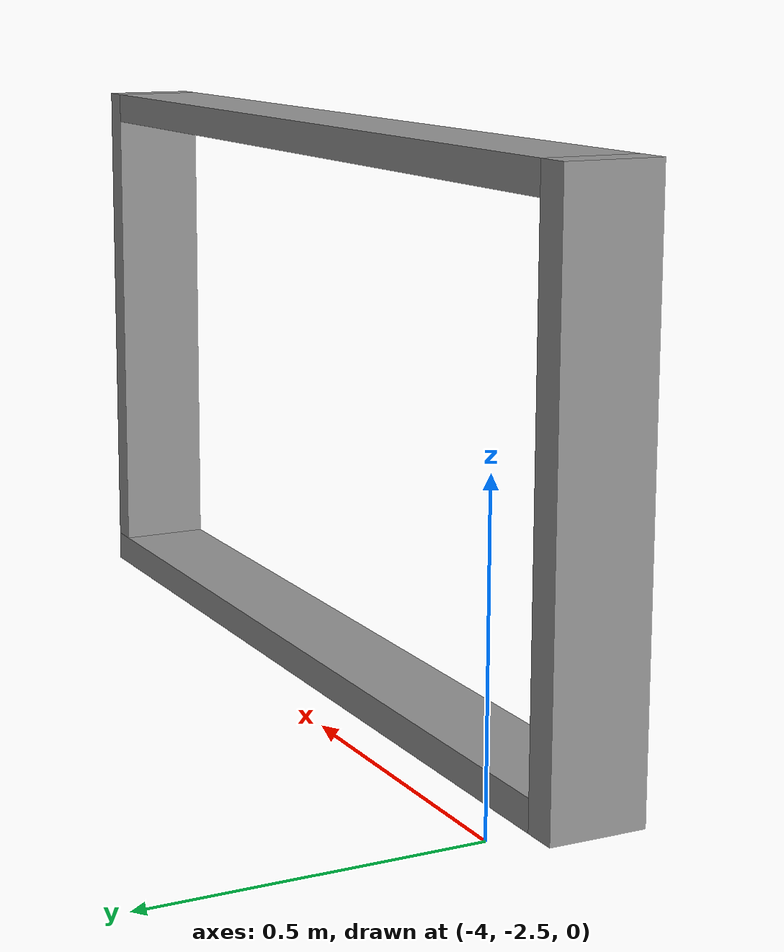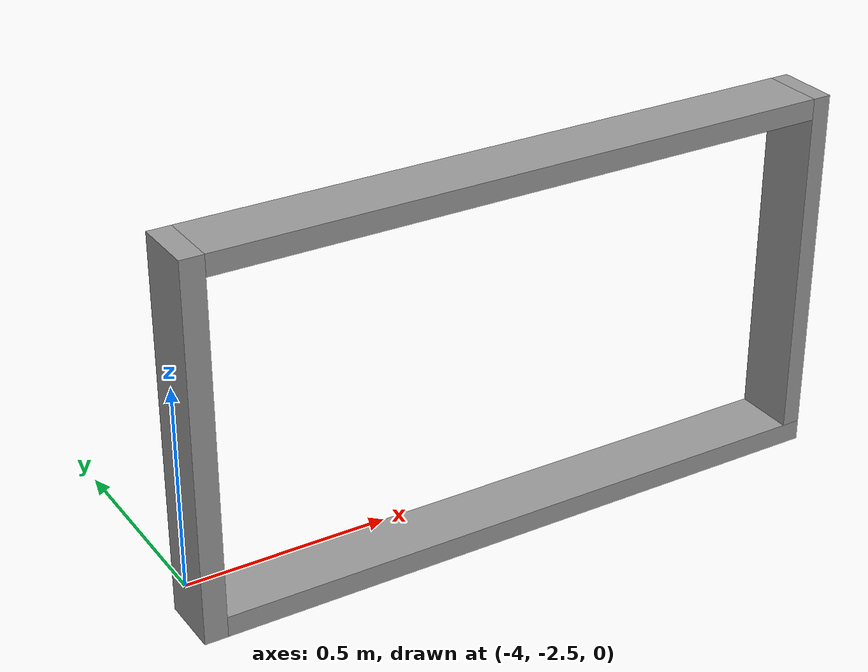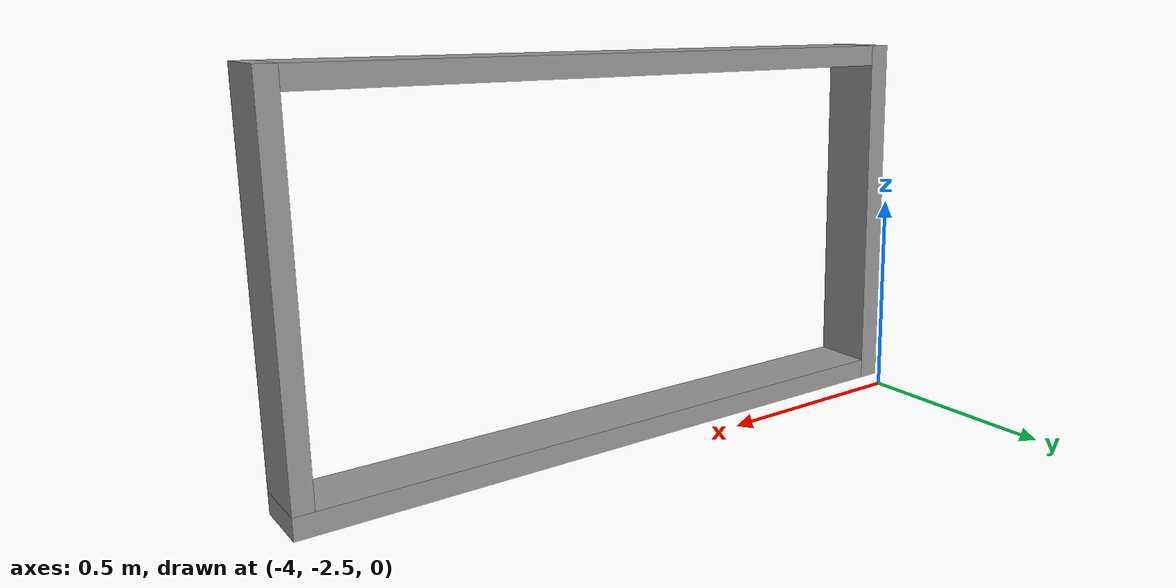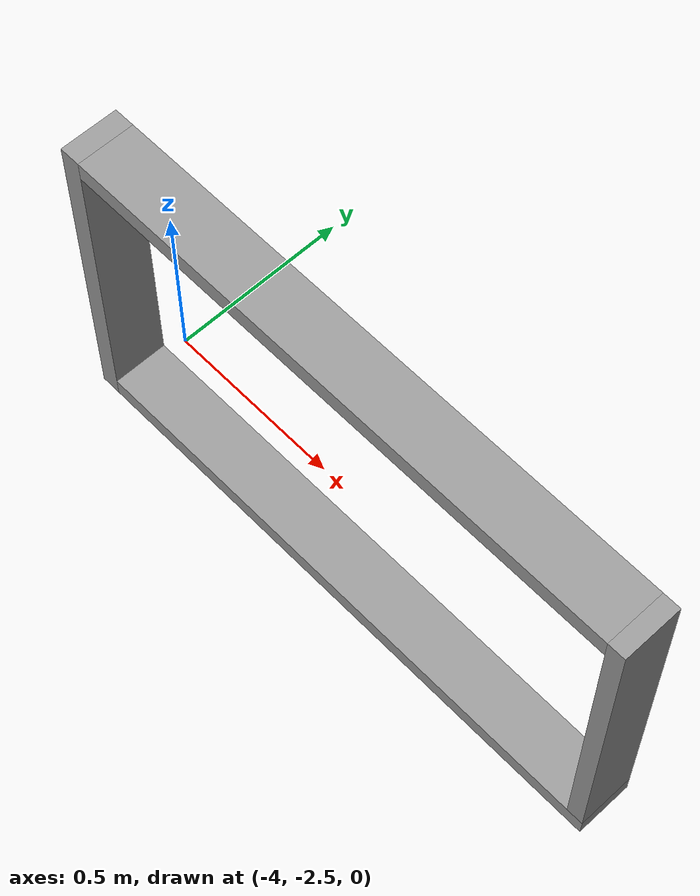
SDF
<?xml version='1.0'?>
<sdf version='1.6'>
  <model name='ehall_window'>
    <pose frame=''>-3.255 -2.64 0 0 -0 0</pose>
    <link name='Wall_0'>
      <pose frame=''>0 0 0 0 -0 0</pose>
      <visual name='Wall_0_Visual_0'>
        <pose frame=''>-0.7725 0 0.45 0 -0 0</pose>
        <geometry>
          <box>
            <size>0.055 0.15 0.9</size>
          </box>
        </geometry>
        <material>
          <script>
            <uri>file://media/materials/scripts/gazebo.material</uri>
            <name>Gazebo/Grey</name>
          </script>
          <ambient>1 1 1 1</ambient>
        </material>
      </visual>
      <collision name='Wall_0_Collision_0'>
        <geometry>
          <box>
            <size>0.055 0.15 0.9</size>
          </box>
        </geometry>
        <pose frame=''>-0.7725 0 0.45 0 -0 0</pose>
      </collision>
      <visual name='Wall_0_Visual_1'>
        <pose frame=''>0.0275 0 0.025 0 -0 0</pose>
        <geometry>
          <box>
            <size>1.545 0.15 0.05</size>
          </box>
        </geometry>
        <material>
          <script>
            <uri>file://media/materials/scripts/gazebo.material</uri>
            <name>Gazebo/Grey</name>
          </script>
          <ambient>1 1 1 1</ambient>
        </material>
      </visual>
      <collision name='Wall_0_Collision_1'>
        <geometry>
          <box>
            <size>1.545 0.15 0.05</size>
          </box>
        </geometry>
        <pose frame=''>0.0275 0 0.025 0 -0 0</pose>
      </collision>
      <visual name='Wall_0_Visual_2'>
        <pose frame=''>0.7775 0 0.475 0 -0 0</pose>
        <geometry>
          <box>
            <size>0.045 0.15 0.85</size>
          </box>
        </geometry>
        <material>
          <script>
            <uri>file://media/materials/scripts/gazebo.material</uri>
            <name>Gazebo/Grey</name>
          </script>
          <ambient>1 1 1 1</ambient>
        </material>
      </visual>
      <collision name='Wall_0_Collision_2'>
        <geometry>
          <box>
            <size>0.045 0.15 0.85</size>
          </box>
        </geometry>
        <pose frame=''>0.7775 0 0.475 0 -0 0</pose>
      </collision>
      <visual name='Wall_0_Visual_3'>
        <pose frame=''>0.005 0 0.875 0 -0 0</pose>
        <geometry>
          <box>
            <size>1.5 0.15 0.05</size>
          </box>
        </geometry>
        <material>
          <script>
            <uri>file://media/materials/scripts/gazebo.material</uri>
            <name>Gazebo/Grey</name>
          </script>
          <ambient>1 1 1 1</ambient>
        </material>
      </visual>
      <collision name='Wall_0_Collision_3'>
        <geometry>
          <box>
            <size>1.5 0.15 0.05</size>
          </box>
        </geometry>
        <pose frame=''>0.005 0 0.875 0 -0 0</pose>
      </collision>
    </link>
    <static>1</static>
  </model>
</sdf>
